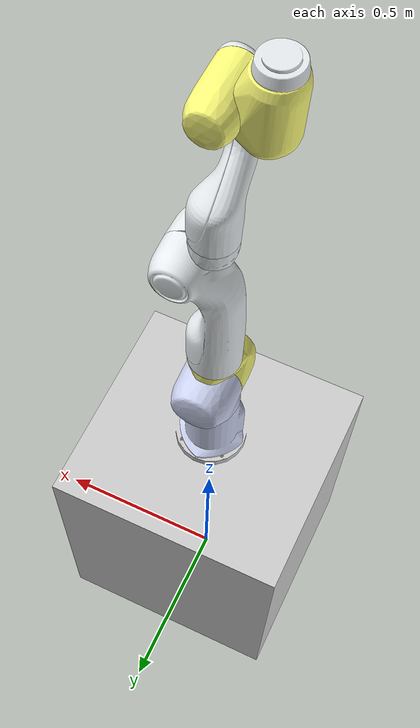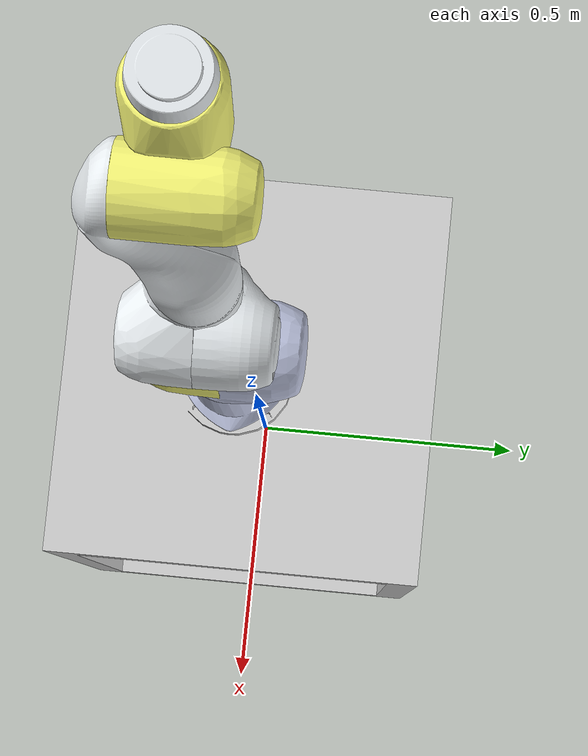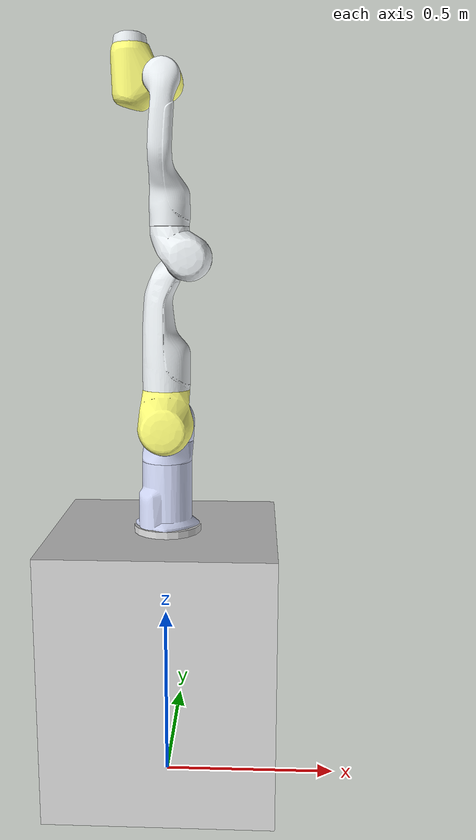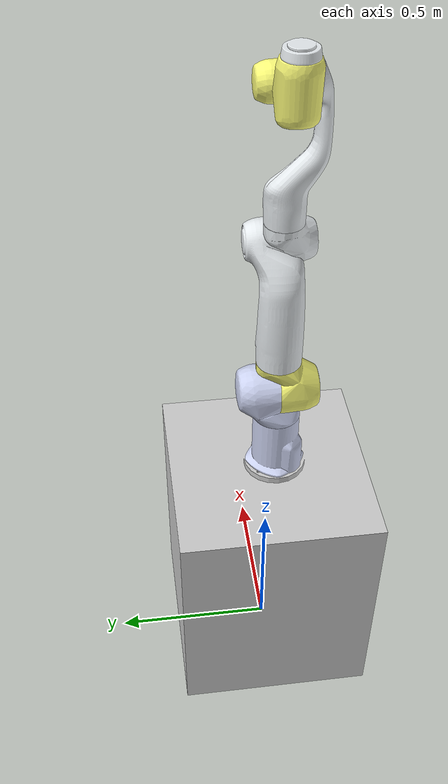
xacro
<?xml version="1.0" encoding="utf-8"?>
<robot xmlns:xacro="http://wiki.ros.org/xacro" name="diana7">

  <!-- Layout configuration file -->
  <xacro:arg name="layout_config" default=""/>
  <xacro:property name="layout_config_file" value="$(arg layout_config)"/>
  <xacro:property name="layout" value="${xacro.load_yaml(layout_config_file) if layout_config_file else dict()}"/>

  <!-- Position Arguments -->
  <xacro:arg name="xyz" default="0 0 0"/>
  <xacro:arg name="rpy" default="0 0 0"/>

  <!-- Tool Argument -->
  <xacro:arg name="tool_name" default="none"/>

  <!-- Include Diana7 Macro -->
  <xacro:include filename="$(find diana7_description)/urdf/diana7_macro.xacro" />

  <link name="world" />

  <!-- Resolve position with priority: 1. CLI/Launch > 2. Layout YAML > 3. Default -->
  <xacro:property name="xyz_arg" value="$(arg xyz)"/>
  <xacro:property name="rpy_arg" value="$(arg rpy)"/>

  <xacro:property name="xyz_final" value="${xyz_arg if xyz_arg != '0 0 0' else (layout['diana7']['xyz'] if 'diana7' in layout and 'xyz' in layout['diana7'] else '0 0 0')}"/>
  <xacro:property name="rpy_final" value="${rpy_arg if rpy_arg != '0 0 0' else (layout['diana7']['rpy'] if 'diana7' in layout and 'rpy' in layout['diana7'] else '0 0 0')}"/>

  <!-- Instantiate Diana7 -->
  <xacro:diana7_robot
    prefix="diana7"
    parent="world"
    tool_name="$(arg tool_name)">
    <origin xyz="${xyz_final}" rpy="${rpy_final}" />
  </xacro:diana7_robot>

</robot>

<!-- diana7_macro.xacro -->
<robot xmlns:xacro="http://wiki.ros.org/xacro">

  <xacro:macro name="diana7_robot" params="prefix:='' parent:='world' tool_name:='none' *origin">

    <link name="${prefix}_base_link">
      <inertial>
        <origin
          xyz="0.00153097191906452 0.00152031034664837 0.0524230280849149"
          rpy="0 0 0" />
        <mass value="1.33110743457779" />
        <inertia
          ixx="0.00695879790529406"
          ixy="9.99328685258342E-05"
          ixz="7.99577031212481E-05"
          iyy="0.00695365531716522"
          iyz="7.90796997368543E-05"
          izz="0.00729823323321907" />
      </inertial>
      <visual>
        <origin
          xyz="0 0 0"
          rpy="0 0 0" />
        <geometry>
          <mesh filename="package://diana7_description/meshes/visual/base.obj" />
        </geometry>
        <material name="">
          <color rgba="0.796078431372549 0.823529411764706 0.937254901960784 1" />
        </material>
      </visual>
      <collision>
        <origin
          xyz="0 0 0"
          rpy="0 0 0" />
        <geometry>
          <mesh filename="package://diana7_description/meshes/collision/base.stl" />
        </geometry>
      </collision>
    </link>

    <link name="${prefix}_pedestal_link">
      <inertial>
        <origin xyz="-0.042824 -0.00012843 0.38233" rpy="0 0 0" />
        <mass value="94.08" />
        <inertia ixx="11.684" ixy="0.00063824" ixz="-0.011577"
              iyy="10.763" iyz="0.004684" izz="8.4692" />
      </inertial>
      <visual>
        <origin xyz="0 0 0" rpy="0 0 0" />
        <geometry>
          <mesh filename="package://diana7_description/meshes/base/diana7_base_link.STL" />
        </geometry>
        <material name="">
          <color rgba="0.8 0.8 0.8 1" />
        </material>
      </visual>
      <collision>
        <origin xyz="0 0 0" rpy="0 0 0" />
        <geometry>
          <mesh filename="package://diana7_description/meshes/base/diana7_base_link.STL" />
        </geometry>
      </collision>
    </link>

    <link name="${prefix}_pedestal_flange_link">
      <inertial>
        <origin xyz="-0.052824 0.021372 -0.39767" rpy="0 0 0" />
        <mass value="94.08" />
        <inertia ixx="11.684" ixy="0.00063824" ixz="-0.011577" iyy="10.763"
              iyz="0.004684" izz="8.4692" />
      </inertial>
      <visual>
        <origin xyz="0 0 0" rpy="0 0 0" />
        <geometry>
          <mesh filename="package://diana7_description/meshes/base/diana7_base_flange_link.STL" />
        </geometry>
        <material name="">
          <color rgba="0.8 0.8 0.8 1" />
        </material>
      </visual>
      <collision>
        <origin xyz="0 0 0" rpy="0 0 0" />
        <geometry>
          <mesh filename="package://diana7_description/meshes/base/diana7_base_flange_link.STL" />
        </geometry>
      </collision>
    </link>

    <joint name="${prefix}_pedestal_joint" type="fixed">
      <parent link="${parent}"/>
      <child link="${prefix}_pedestal_link"/>
      <xacro:insert_block name="origin" />
    </joint>

    <joint name="${prefix}_pedestal_to_flange" type="fixed">
      <origin xyz="0.01 -0.0215 0.78" rpy="0 0 0" />
      <parent link="${prefix}_pedestal_link" />
      <child link="${prefix}_pedestal_flange_link" />
    </joint>

    <joint name="${prefix}_base_joint" type="fixed">
      <parent link="${prefix}_pedestal_flange_link"/>
      <child link="${prefix}_base_link"/>
      <origin xyz="0 0 0" rpy="0 0 0" />
    </joint>

    <link name="${prefix}_link_1">
      <inertial>
        <origin
          xyz="5.5234067920554E-05  -0.0254878204920178 0.0355441421264809"
          rpy="0 0 0" />
        <mass value="1.09025546409174" />
        <inertia
          ixx="0.00585031196428369"
          ixy="1.4630349447555E-07"
          ixz="1.35351687162397E-06"
          iyy="0.00645496952227061"
          iyz="-0.00104800484741808"
          izz="0.00459531291521244" />
      </inertial>
      <visual>
        <origin
          xyz="0 0 0"
          rpy="3.1415926531795866 0 0" />
        <geometry>
          <mesh filename="package://diana7_description/meshes/visual/link_1.obj" />
        </geometry>
        <material name="">
          <color rgba="0.796078431372549 0.823529411764706 0.937254901960784 1" />
        </material>
      </visual>
      <collision>
        <origin
          xyz="0 0 0"
          rpy="3.1415926531795866 0 0" />
        <geometry>
          <mesh filename="package://diana7_description/meshes/collision/link_1.stl" />
        </geometry>
      </collision>
    </link>

    <joint name="${prefix}_joint_1" type="revolute">
      <origin
        xyz="0.0 -2.9150689157e-12 0.2856"
        rpy="-3.1415926535795866 0.0 -0.0" />
      <parent link="${prefix}_base_link" />
      <child link="${prefix}_link_1" />
      <axis xyz="0 0 1" />
      <limit
        lower="-3.12"
        upper="3.12"
        effort="235"
        velocity="2.61" />
    </joint>

    <link name="${prefix}_link_2">
      <inertial>
        <origin
          xyz="-3.62724763868157E-06 -0.0292741005087307 -0.041280769252073"
          rpy="0 0 0" />
        <mass value="1.09515454908799" />
        <inertia
          ixx="0.00575817488413533"
          ixy="4.92454490330888E-07"
          ixz="-5.75758988171004E-07"
          iyy="0.00452592941277235"
          iyz="0.00135206824645357"
          izz="0.0058904584276842" />
      </inertial>
      <visual>
        <origin
          xyz="0 0 0"
          rpy="0 0 0" />
        <geometry>
          <mesh filename="package://diana7_description/meshes/visual/link_2.obj" />
        </geometry>
        <material name="">
          <color rgba="0.980392156862745 0.980392156862745 0.470588235294118 1" />
        </material>
      </visual>
      <collision>
        <origin
          xyz="0 0 0"
          rpy="0 0 0" />
        <geometry>
          <mesh filename="package://diana7_description/meshes/collision/link_2.stl" />
        </geometry>
      </collision>
    </link>

    <joint name="${prefix}_joint_2" type="revolute">
      <origin
        xyz="0.0 -0.0 0.0"
        rpy="1.57079632679 -0.0 0.0" />
      <parent link="${prefix}_link_1" />
      <child link="${prefix}_link_2" />
      <axis xyz="0 0 1" />
      <limit
        lower="-1.57"
        upper="1.57"
        effort="235"
        velocity="2.618" />
    </joint>

    <link name="${prefix}_link_3">
      <inertial>
        <origin
          xyz="0.0114318213510691 -0.0101707598694861 0.15131695375217"
          rpy="0 3.1415926531795866 3.1415926531795866" />
        <mass value="2.01686690128149" />
        <inertia
          ixx="0.0362470020041464"
          ixy="-0.00099203786071914"
          ixz="-0.00494440140493448"
          iyy="0.0374857206758098"
          iyz="-0.00313859974095155"
          izz="0.00905850119342719" />
      </inertial>
      <visual>
        <origin
          xyz="0 0 0"
          rpy="3.1415926531795866 0 0" />
        <geometry>
          <mesh filename="package://diana7_description/meshes/visual/link_3.obj" />
        </geometry>
        <material name="">
          <color rgba="0.898039215686275 0.917647058823529 0.929411764705882 1" />
        </material>
      </visual>
      <collision>
        <origin
          xyz="0 0 0"
          rpy="3.1415926531795866 0 0" />
        <geometry>
          <mesh
            filename="package://diana7_description/meshes/collision/link_3.stl" />
        </geometry>
      </collision>
    </link>

    <joint name="${prefix}_joint_3" type="revolute">
      <origin
        xyz="0.0 -0.4586 -2.24557565126e-12"
        rpy="-1.57079632679 0.0 0.0" />
      <parent link="${prefix}_link_2" />
      <child link="${prefix}_link_3" />
      <axis xyz="0 0 1" />
      <limit
        lower="-3.12"
        upper="3.12"
        effort="111"
        velocity="2.61" />
    </joint>

    <link name="${prefix}_link_4">
      <inertial>
        <origin
          xyz="-0.0240716370537192 -0.0235631728011761 -0.0366858174253844"
          rpy="0 0 0" />
        <mass value="0.849743349506889" />
        <inertia
          ixx="0.00313444335639628"
          ixy="-0.000681243351041131"
          ixz="0.000725380047812207"
          iyy="0.00333717642442852"
          iyz="0.000771057559109157"
          izz="0.0034847726349841" />
      </inertial>
      <visual>
        <origin
          xyz="0 0 0"
          rpy="0 0 0" />
        <geometry>
          <mesh filename="package://diana7_description/meshes/visual/link_4.obj" />
        </geometry>
        <material name="">
          <color rgba="0.898039215686275 0.917647058823529 0.929411764705882 1" />
        </material>
      </visual>
      <collision>
        <origin
          xyz="0 0 0"
          rpy="0 0 0" />
        <geometry>
          <mesh filename="package://diana7_description/meshes/collision/link_4.stl" />
        </geometry>
      </collision>
    </link>

    <joint name="${prefix}_joint_4" type="revolute">
      <origin
        xyz="0.065 -0.0 0.0"
        rpy="1.57079632679 -0.0 0.0" />
      <parent link="${prefix}_link_3" />
      <child link="${prefix}_link_4" />
      <axis xyz="0 0 1" />
      <limit
        lower="0"
        upper="3.05"
        effort="111"
        velocity="2.61" />
    </joint>

    <link name="${prefix}_link_5">
      <inertial>
        <origin
          xyz="-0.00867148011164554 0.0383499684802812 0.188626"
          rpy="0 3.1415926531795866 3.1415926531795866" />
        <mass value="1.20580396965245" />
        <inertia
          ixx="0.0218436427570802"
          ixy="-0.000309747330693722"
          ixz="0.00089039094846826"
          iyy="0.0205896836785318"
          iyz="0.00493573923914426"
          izz="0.00372270106038425" />
      </inertial>
      <visual>
        <origin
          xyz="0 0 -0.02162"
          rpy="3.1415926531795866 0 0" />
        <geometry>
          <mesh filename="package://diana7_description/meshes/visual/link_5.obj" />
        </geometry>
        <material name="">
          <color rgba="0.898039215686275 0.917647058823529 0.929411764705882 1" />
        </material>
      </visual>
      <collision>
        <origin
          xyz="0 0 -0.02162"
          rpy="3.1415926531795866 0 0" />
        <geometry>
          <mesh filename="package://diana7_description/meshes/collision/link_5.stl" />
        </geometry>
      </collision>
    </link>

    <joint name="${prefix}_joint_5" type="revolute">
      <origin
        xyz="-0.0528 -0.4554 -2.22990656691e-12"
        rpy="-1.57079632679 0.0 0.0" />
      <parent link="${prefix}_link_4" />
      <child link="${prefix}_link_5" />
      <axis xyz="0 0 1" />
      <limit
        lower="-3.12"
        upper="3.12"
        effort="54"
        velocity="3.14" />
    </joint>

    <link name="${prefix}_link_6">
      <inertial>
        <origin
          xyz="0.045897226241036 0.00848579821002571 -0.0078257811617596"
          rpy="0 3.1415926531795866 3.1415926531795866" />
        <mass value="0.847157564562275" />
        <inertia
          ixx="0.00286926864109097"
          ixy="-0.000341664135091818"
          ixz="-0.000318082297486923"
          iyy="0.0043294660443987"
          iyz="-5.82962380662208E-05"
          izz="0.00437292566725527" />
      </inertial>
      <visual>
        <origin
          xyz="0 0 0"
          rpy="3.1415926531795866 0 3.14159265359" />
        <geometry>
          <mesh filename="package://diana7_description/meshes/visual/link_6.obj" />
        </geometry>
        <material name="">
          <color rgba="0.980392156862745 0.980392156862745 0.470588235294118 1" />
        </material>
      </visual>
      <collision>
        <origin
          xyz="0 0 0"
          rpy="3.1415926531795866 0 3.14159265359" />
        <geometry>
          <mesh filename="package://diana7_description/meshes/collision/link_6.stl" />
        </geometry>
      </collision>
    </link>

    <joint name="${prefix}_joint_6" type="revolute">
      <origin
        xyz="-0.0122 0.0 0.0"
        rpy="1.57079632679 -1.0206823934513925e-11 -3.141592653589793" />
      <parent link="${prefix}_link_5" />
      <child link="${prefix}_link_6" />
      <axis xyz="0 0 1" />
      <limit
        lower="-3.12"
        upper="3.12"
        effort="54"
        velocity="3.14" />
    </joint>

    <link name="${prefix}_link_7">
      <inertial>
        <origin
          xyz="0.00117005127509708 5.03191940906655E-06 0.0151381784822231"
          rpy="0 0 0" />
        <mass value="0.233956150459573" />
        <inertia
          ixx="0.000142027360977168"
          ixy="1.76426389345981E-08"
          ixz="2.14635741626268E-07"
          iyy="0.000134421724783865"
          iyz="-1.29988689037464E-09"
          izz="0.000240242798572463" />
      </inertial>
      <visual>
        <origin
          xyz="0 0 0"
          rpy="0 0 0" />
        <geometry>
          <mesh filename="package://diana7_description/meshes/visual/link_7.obj" />
        </geometry>
        <material name="">
          <color rgba="0.898039215686275 0.917647058823529 0.929411764705882 1" />
        </material>
      </visual>
      <collision>
        <origin
          xyz="0 0 0"
          rpy="0 0 0" />
        <geometry>
          <mesh filename="package://diana7_description/meshes/collision/link_7.stl" />
        </geometry>
      </collision>
    </link>

    <joint name="${prefix}_joint_7" type="revolute">
      <origin
        xyz="0.087 -0.1169 -5.72411237751e-13"
        rpy="-1.57079632679 0.0 0.0" />
      <parent link="${prefix}_link_6" />
      <child link="${prefix}_link_7" />
      <axis xyz="0 0 1" />
      <limit
        lower="-3.12"
        upper="3.12"
        effort="54"
        velocity="3.14" />
    </joint>

    <!-- End Effector Link -->
    <link name="${prefix}_ee_link" />
    <joint name="${prefix}_joint_ee" type="fixed">
      <parent link="${prefix}_link_7" />
      <child link="${prefix}_ee_link" />
      <origin xyz="0 0 0" rpy="3.1415926531795866 0 1.5707963266" />
    </joint>

    <!-- Tool Loading -->
    <xacro:include filename="$(find zlab_tools_description)/urdf/zlab_tools.xacro" />

    <xacro:unless value="${tool_name == 'none'}">
        <xacro:load_tool
            tool_name="${tool_name}"
            prefix="${prefix}"
            parent="${prefix}_ee_link" />
    </xacro:unless>

  </xacro:macro>
</robot>
